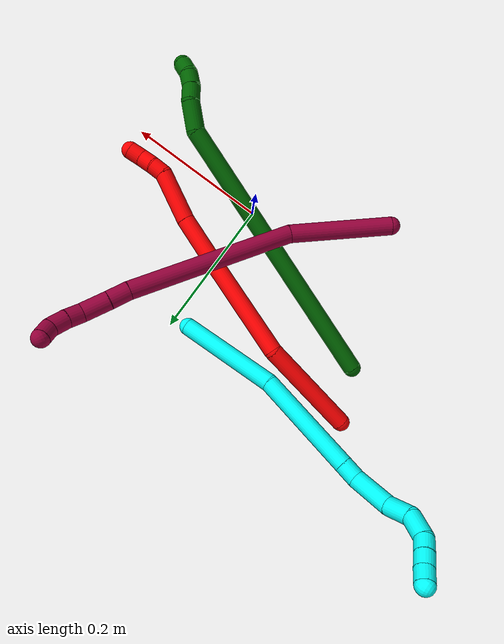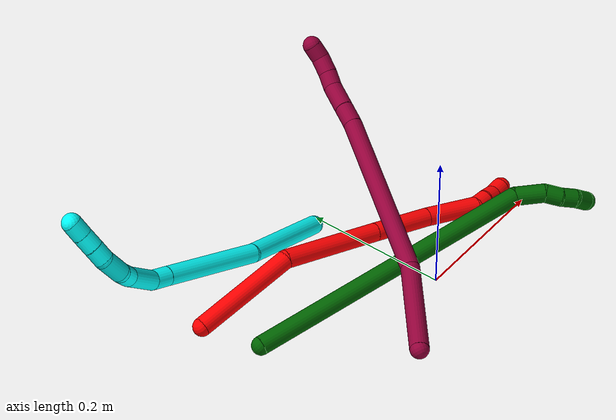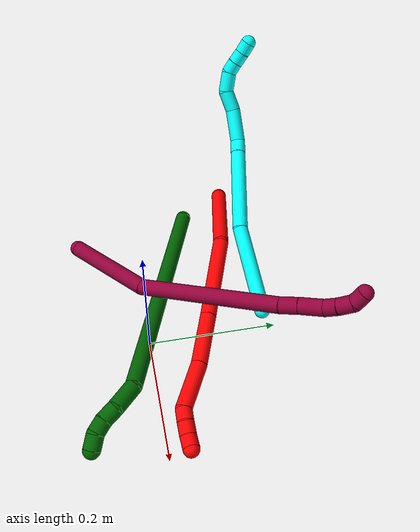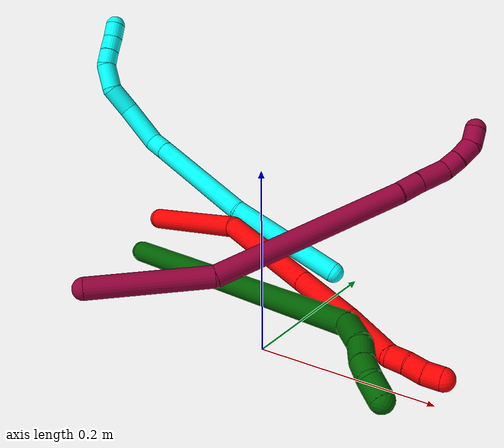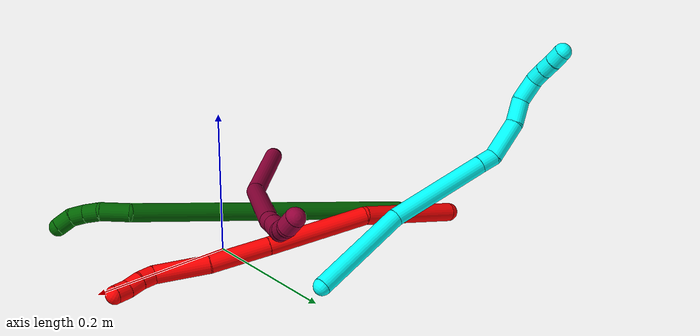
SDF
<sdf version="1.7">
 <world name="default">
  <model name="photoneo_s_sensor">
   <static>1</static>
   <pose>0 0 2 1.57079 1.57079 3.14159</pose>
   <link name="link">
    <inertial><mass>0.1</mass></inertial>
    <sensor name="sensor" type="depth">
     <update_rate>30</update_rate>
     <camera>
      <horizontal_fov>1.22</horizontal_fov>
      <image><width>1920</width><height>1200</height><format>B8G8R8</format></image>
      <clip><near>0.1</near><far>4</far></clip>
      <depth_camera><output>points</output></depth_camera>
     </camera>
     <plugin name="camera_plugin" filename="libgazebo_ros_depth_camera.so">
      <baseline>0.2</baseline>
      <alwaysOn>1</alwaysOn>
      <updateRate>0.0</updateRate>
      <cameraName>camera_ir</cameraName>
      <imageTopicName>/camera/color/image_raw</imageTopicName>
      <cameraInfoTopicName>/camera/color/camera_info</cameraInfoTopicName>
      <depthImageTopicName>/camera/depth/image_raw</depthImageTopicName>
      <depthImageCameraInfoTopicName>/camera/depth/camera_info</depthImageCameraInfoTopicName>
      <pointCloudTopicName>/camera/depth/points</pointCloudTopicName>
      <frameName>fr_optical</frameName>
      <pointCloudCutoff>0.1</pointCloudCutoff>
      <pointCloudCutoffMax>2.0</pointCloudCutoffMax>
      <distortionK1>0</distortionK1>
      <distortionK2>0</distortionK2>
      <distortionK3>0</distortionK3>
      <distortionT1>0</distortionT1>
      <distortionT2>0</distortionT2>
      <CxPrime>0</CxPrime>
      <Cx>0</Cx>
      <Cy>0</Cy>
      <focalLength>0</focalLength>
      <hackBaseline>0</hackBaseline>
     </plugin>
    </sensor>
   </link>
  </model>
  <model name="bin">
   <static>1</static>
   <link name="bottom">
    <collision name="collision-bottom">
     <pose>0 0 -0.01 0 -0 0</pose>
     <geometry><box><size>0.8 0.6 0.02</size></box></geometry>
     <surface>
      <friction><ode><mu>100</mu><mu2>100</mu2></ode></friction>
      <contact><collide_bitmask>65535</collide_bitmask></contact>
     </surface>
    </collision>
   </link>
   <link name="west_wall">
    <collision name="collision-west_wall">
     <pose>-0.41 0 0.1 0 -0 0</pose>
     <geometry><box><size>0.02 0.6 0.2</size></box></geometry>
     <surface>
      <friction><ode><mu>100</mu><mu2>100</mu2></ode></friction>
      <contact><collide_bitmask>65535</collide_bitmask></contact>
     </surface>
    </collision>
   </link>
   <link name="east_wall">
    <collision name="collision-east_wall">
     <pose>0.41 0 0.1 0 -0 0</pose>
     <geometry><box><size>0.02 0.6 0.2</size></box></geometry>
     <surface>
      <friction><ode><mu>100</mu><mu2>100</mu2></ode></friction>
      <contact><collide_bitmask>65535</collide_bitmask></contact>
     </surface>
    </collision>
   </link>
   <link name="south_wall">
    <collision name="collision-south_wall">
     <pose>0 -0.31 0.1 0 -0 0</pose>
     <geometry><box><size>0.8 0.02 0.2</size></box></geometry>
     <surface>
      <friction><ode><mu>100</mu><mu2>100</mu2></ode></friction>
      <contact><collide_bitmask>65535</collide_bitmask></contact>
     </surface>
    </collision>
   </link>
   <link name="north_wall">
    <collision name="collision-north_wall">
     <pose>0 0.31 0.1 0 -0 0</pose>
     <geometry><box><size>0.8 0.02 0.2</size></box></geometry>
     <surface>
      <friction><ode><mu>100</mu><mu2>100</mu2></ode></friction>
      <contact><collide_bitmask>65535</collide_bitmask></contact>
     </surface>
    </collision>
   </link>
  </model>
  <model name="2">
   <static>0</static>
   <link name="2">
    <collision name="collision-cylinder-e_1_1_4">
     <pose>0.067923 -0.008934 -0.020213 2.7254 1.25623 2.5757</pose>
     <geometry><cylinder><radius>0.0125</radius><length>0.142855</length></cylinder></geometry>
     <surface>
      <friction><ode><mu>1.16</mu><mu2>1.16</mu2><slip1>0</slip1><slip2>0</slip2></ode></friction>
      <contact><ode><kp>1e+06</kp><kd>1</kd><max_vel>0</max_vel><min_depth>0.001</min_depth></ode></contact>
     </surface>
    </collision>
    <visual name="visual-cylinder-e_1_1_4">
     <pose>0.067923 -0.008934 -0.020213 2.7254 1.25623 2.5757</pose>
     <geometry><cylinder><radius>0.0125</radius><length>0.142855</length></cylinder></geometry>
     <material><ambient>1 0 0 1</ambient></material>
    </visual>
    <collision name="collision-cylinder-e_2_4_5">
     <pose>0.189216 -0.029743 -0.083572 2.87303 0.873043 2.57788</pose>
     <geometry><cylinder><radius>0.0125</radius><length>0.139298</length></cylinder></geometry>
     <surface>
      <friction><ode><mu>1.16</mu><mu2>1.16</mu2><slip1>0</slip1><slip2>0</slip2></ode></friction>
      <contact><ode><kp>1e+06</kp><kd>1</kd><max_vel>0</max_vel><min_depth>0.001</min_depth></ode></contact>
     </surface>
    </collision>
    <visual name="visual-cylinder-e_2_4_5">
     <pose>0.189216 -0.029743 -0.083572 2.87303 0.873043 2.57788</pose>
     <geometry><cylinder><radius>0.0125</radius><length>0.139298</length></cylinder></geometry>
     <material><ambient>1 0 0 1</ambient></material>
    </visual>
    <collision name="collision-cylinder-e_3_5_6">
     <pose>0.274092 -0.049236 -0.152326 2.85241 0.8674 2.53234</pose>
     <geometry><cylinder><radius>0.0125</radius><length>0.082618</length></cylinder></geometry>
     <surface>
      <friction><ode><mu>1.16</mu><mu2>1.16</mu2><slip1>0</slip1><slip2>0</slip2></ode></friction>
      <contact><ode><kp>1e+06</kp><kd>1</kd><max_vel>0</max_vel><min_depth>0.001</min_depth></ode></contact>
     </surface>
    </collision>
    <visual name="visual-cylinder-e_3_5_6">
     <pose>0.274092 -0.049236 -0.152326 2.85241 0.8674 2.53234</pose>
     <geometry><cylinder><radius>0.0125</radius><length>0.082618</length></cylinder></geometry>
     <material><ambient>1 0 0 1</ambient></material>
    </visual>
    <collision name="collision-cylinder-e_4_6_7">
     <pose>0.333091 -0.068836 -0.200091 2.64586 0.82919 2.09789</pose>
     <geometry><cylinder><radius>0.0125</radius><length>0.074575</length></cylinder></geometry>
     <surface>
      <friction><ode><mu>1.16</mu><mu2>1.16</mu2><slip1>0</slip1><slip2>0</slip2></ode></friction>
      <contact><ode><kp>1e+06</kp><kd>1</kd><max_vel>0</max_vel><min_depth>0.001</min_depth></ode></contact>
     </surface>
    </collision>
    <visual name="visual-cylinder-e_4_6_7">
     <pose>0.333091 -0.068836 -0.200091 2.64586 0.82919 2.09789</pose>
     <geometry><cylinder><radius>0.0125</radius><length>0.074575</length></cylinder></geometry>
     <material><ambient>1 0 0 1</ambient></material>
    </visual>
    <collision name="collision-cylinder-e_5_7_8">
     <pose>0.369316 -0.079798 -0.227268 -2.94136 1.03995 -2.79423</pose>
     <geometry><cylinder><radius>0.0125</radius><length>0.020245</length></cylinder></geometry>
     <surface>
      <friction><ode><mu>1.16</mu><mu2>1.16</mu2><slip1>0</slip1><slip2>0</slip2></ode></friction>
      <contact><ode><kp>1e+06</kp><kd>1</kd><max_vel>0</max_vel><min_depth>0.001</min_depth></ode></contact>
     </surface>
    </collision>
    <visual name="visual-cylinder-e_5_7_8">
     <pose>0.369316 -0.079798 -0.227268 -2.94136 1.03995 -2.79423</pose>
     <geometry><cylinder><radius>0.0125</radius><length>0.020245</length></cylinder></geometry>
     <material><ambient>1 0 0 1</ambient></material>
    </visual>
    <collision name="collision-cylinder-e_6_8_9">
     <pose>0.385842 -0.076824 -0.238487 -2.83602 0.875992 -2.50627</pose>
     <geometry><cylinder><radius>0.0125</radius><length>0.020299</length></cylinder></geometry>
     <surface>
      <friction><ode><mu>1.16</mu><mu2>1.16</mu2><slip1>0</slip1><slip2>0</slip2></ode></friction>
      <contact><ode><kp>1e+06</kp><kd>1</kd><max_vel>0</max_vel><min_depth>0.001</min_depth></ode></contact>
     </surface>
    </collision>
    <visual name="visual-cylinder-e_6_8_9">
     <pose>0.385842 -0.076824 -0.238487 -2.83602 0.875992 -2.50627</pose>
     <geometry><cylinder><radius>0.0125</radius><length>0.020299</length></cylinder></geometry>
     <material><ambient>1 0 0 1</ambient></material>
    </visual>
    <collision name="collision-cylinder-e_7_9_2">
     <pose>0.402581 -0.073209 -0.248972 -2.77225 1.09583 -2.5475</pose>
     <geometry><cylinder><radius>0.0125</radius><length>0.020111</length></cylinder></geometry>
     <surface>
      <friction><ode><mu>1.16</mu><mu2>1.16</mu2><slip1>0</slip1><slip2>0</slip2></ode></friction>
      <contact><ode><kp>1e+06</kp><kd>1</kd><max_vel>0</max_vel><min_depth>0.001</min_depth></ode></contact>
     </surface>
    </collision>
    <visual name="visual-cylinder-e_7_9_2">
     <pose>0.402581 -0.073209 -0.248972 -2.77225 1.09583 -2.5475</pose>
     <geometry><cylinder><radius>0.0125</radius><length>0.020111</length></cylinder></geometry>
     <material><ambient>1 0 0 1</ambient></material>
    </visual>
    <collision name="collision-sphere-2">
     <pose>0.411523 -0.071549 -0.25326 0 -0 0</pose>
     <geometry><sphere><radius>0.0125</radius></sphere></geometry>
     <surface>
      <friction><ode><mu>1.16</mu><mu2>1.16</mu2><slip1>0</slip1><slip2>0</slip2></ode></friction>
      <contact><ode><kp>1e+06</kp><kd>1</kd><max_vel>0</max_vel><min_depth>0.001</min_depth></ode></contact>
     </surface>
    </collision>
    <visual name="visual-sphere-2">
     <pose>0.411523 -0.071549 -0.25326 0 -0 0</pose>
     <geometry><sphere><radius>0.0125</radius></sphere></geometry>
     <material><ambient>1 0 0 1</ambient></material>
    </visual>
    <collision name="collision-sphere-9">
     <pose>0.393638 -0.074869 -0.244684 0 -0 0</pose>
     <geometry><sphere><radius>0.0125</radius></sphere></geometry>
     <surface>
      <friction><ode><mu>1.16</mu><mu2>1.16</mu2><slip1>0</slip1><slip2>0</slip2></ode></friction>
      <contact><ode><kp>1e+06</kp><kd>1</kd><max_vel>0</max_vel><min_depth>0.001</min_depth></ode></contact>
     </surface>
    </collision>
    <visual name="visual-sphere-9">
     <pose>0.393638 -0.074869 -0.244684 0 -0 0</pose>
     <geometry><sphere><radius>0.0125</radius></sphere></geometry>
     <material><ambient>1 0 0 1</ambient></material>
    </visual>
    <collision name="collision-sphere-4">
     <pose>0.135845 -0.017869 -0.040426 0 -0 0</pose>
     <geometry><sphere><radius>0.0125</radius></sphere></geometry>
     <surface>
      <friction><ode><mu>1.16</mu><mu2>1.16</mu2><slip1>0</slip1><slip2>0</slip2></ode></friction>
      <contact><ode><kp>1e+06</kp><kd>1</kd><max_vel>0</max_vel><min_depth>0.001</min_depth></ode></contact>
     </surface>
    </collision>
    <visual name="visual-sphere-4">
     <pose>0.135845 -0.017869 -0.040426 0 -0 0</pose>
     <geometry><sphere><radius>0.0125</radius></sphere></geometry>
     <material><ambient>1 0 0 1</ambient></material>
    </visual>
    <collision name="collision-sphere-1">
     <geometry><sphere><radius>0.0125</radius></sphere></geometry>
     <surface>
      <friction><ode><mu>1.16</mu><mu2>1.16</mu2><slip1>0</slip1><slip2>0</slip2></ode></friction>
      <contact><ode><kp>1e+06</kp><kd>1</kd><max_vel>0</max_vel><min_depth>0.001</min_depth></ode></contact>
     </surface>
    </collision>
    <visual name="visual-sphere-1">
     <geometry><sphere><radius>0.0125</radius></sphere></geometry>
     <material><ambient>1 0 0 1</ambient></material>
    </visual>
    <collision name="collision-sphere-8">
     <pose>0.378045 -0.078778 -0.23229 0 -0 0</pose>
     <geometry><sphere><radius>0.0125</radius></sphere></geometry>
     <surface>
      <friction><ode><mu>1.16</mu><mu2>1.16</mu2><slip1>0</slip1><slip2>0</slip2></ode></friction>
      <contact><ode><kp>1e+06</kp><kd>1</kd><max_vel>0</max_vel><min_depth>0.001</min_depth></ode></contact>
     </surface>
    </collision>
    <visual name="visual-sphere-8">
     <pose>0.378045 -0.078778 -0.23229 0 -0 0</pose>
     <geometry><sphere><radius>0.0125</radius></sphere></geometry>
     <material><ambient>1 0 0 1</ambient></material>
    </visual>
    <collision name="collision-sphere-5">
     <pose>0.242588 -0.041617 -0.126717 0 -0 0</pose>
     <geometry><sphere><radius>0.0125</radius></sphere></geometry>
     <surface>
      <friction><ode><mu>1.16</mu><mu2>1.16</mu2><slip1>0</slip1><slip2>0</slip2></ode></friction>
      <contact><ode><kp>1e+06</kp><kd>1</kd><max_vel>0</max_vel><min_depth>0.001</min_depth></ode></contact>
     </surface>
    </collision>
    <visual name="visual-sphere-5">
     <pose>0.242588 -0.041617 -0.126717 0 -0 0</pose>
     <geometry><sphere><radius>0.0125</radius></sphere></geometry>
     <material><ambient>1 0 0 1</ambient></material>
    </visual>
    <collision name="collision-sphere-6">
     <pose>0.305596 -0.056856 -0.177936 0 -0 0</pose>
     <geometry><sphere><radius>0.0125</radius></sphere></geometry>
     <surface>
      <friction><ode><mu>1.16</mu><mu2>1.16</mu2><slip1>0</slip1><slip2>0</slip2></ode></friction>
      <contact><ode><kp>1e+06</kp><kd>1</kd><max_vel>0</max_vel><min_depth>0.001</min_depth></ode></contact>
     </surface>
    </collision>
    <visual name="visual-sphere-6">
     <pose>0.305596 -0.056856 -0.177936 0 -0 0</pose>
     <geometry><sphere><radius>0.0125</radius></sphere></geometry>
     <material><ambient>1 0 0 1</ambient></material>
    </visual>
    <collision name="collision-sphere-7">
     <pose>0.360587 -0.080817 -0.222246 0 -0 0</pose>
     <geometry><sphere><radius>0.0125</radius></sphere></geometry>
     <surface>
      <friction><ode><mu>1.16</mu><mu2>1.16</mu2><slip1>0</slip1><slip2>0</slip2></ode></friction>
      <contact><ode><kp>1e+06</kp><kd>1</kd><max_vel>0</max_vel><min_depth>0.001</min_depth></ode></contact>
     </surface>
    </collision>
    <visual name="visual-sphere-7">
     <pose>0.360587 -0.080817 -0.222246 0 -0 0</pose>
     <geometry><sphere><radius>0.0125</radius></sphere></geometry>
     <material><ambient>1 0 0 1</ambient></material>
    </visual>
    <inertial>
     <pose>0.213901 -0.038536 -0.112969 0 -0 0</pose>
     <mass>0.5</mass>
     <inertia>
      <ixx>-4e-05</ixx>
      <ixy>0</ixy>
      <ixz>0</ixz>
      <iyy>0.000688</iyy>
      <iyz>0</iyz>
      <izz>-0.000412</izz>
     </inertia>
    </inertial>
   </link>
   <pose>-0.2754 0.165052 0.031993 -0.344242 -0.435833 0.042088</pose>
  </model>
  <model name="3">
   <static>0</static>
   <link name="3">
    <collision name="collision-cylinder-e_1_1_4">
     <pose>-0.007158 -0.007054 0.072229 0.097349 -0.098317 -0.004793</pose>
     <geometry><cylinder><radius>0.0125</radius><length>0.145849</length></cylinder></geometry>
     <surface>
      <friction><ode><mu>1.16</mu><mu2>1.16</mu2><slip1>0</slip1><slip2>0</slip2></ode></friction>
      <contact><ode><kp>1e+06</kp><kd>1</kd><max_vel>0</max_vel><min_depth>0.001</min_depth></ode></contact>
     </surface>
    </collision>
    <visual name="visual-cylinder-e_1_1_4">
     <pose>-0.007158 -0.007054 0.072229 0.097349 -0.098317 -0.004793</pose>
     <geometry><cylinder><radius>0.0125</radius><length>0.145849</length></cylinder></geometry>
     <material><ambient>0.003922 1 0.996078 1</ambient></material>
    </visual>
    <collision name="collision-cylinder-e_2_4_5">
     <pose>-0.035167 -0.012439 0.213684 -0.02409 -0.292469 0.003548</pose>
     <geometry><cylinder><radius>0.0125</radius><length>0.144635</length></cylinder></geometry>
     <surface>
      <friction><ode><mu>1.16</mu><mu2>1.16</mu2><slip1>0</slip1><slip2>0</slip2></ode></friction>
      <contact><ode><kp>1e+06</kp><kd>1</kd><max_vel>0</max_vel><min_depth>0.001</min_depth></ode></contact>
     </surface>
    </collision>
    <visual name="visual-cylinder-e_2_4_5">
     <pose>-0.035167 -0.012439 0.213684 -0.02409 -0.292469 0.003548</pose>
     <geometry><cylinder><radius>0.0125</radius><length>0.144635</length></cylinder></geometry>
     <material><ambient>0.003922 1 0.996078 1</ambient></material>
    </visual>
    <collision name="collision-cylinder-e_3_5_6">
     <pose>-0.059769 -0.010614 0.294655 -0.01344 -0.309194 0.002095</pose>
     <geometry><cylinder><radius>0.0125</radius><length>0.024661</length></cylinder></geometry>
     <surface>
      <friction><ode><mu>1.16</mu><mu2>1.16</mu2><slip1>0</slip1><slip2>0</slip2></ode></friction>
      <contact><ode><kp>1e+06</kp><kd>1</kd><max_vel>0</max_vel><min_depth>0.001</min_depth></ode></contact>
     </surface>
    </collision>
    <visual name="visual-cylinder-e_3_5_6">
     <pose>-0.059769 -0.010614 0.294655 -0.01344 -0.309194 0.002095</pose>
     <geometry><cylinder><radius>0.0125</radius><length>0.024661</length></cylinder></geometry>
     <material><ambient>0.003922 1 0.996078 1</ambient></material>
    </visual>
    <collision name="collision-cylinder-e_4_6_7">
     <pose>-0.060181 -0.004611 0.3335 -0.212418 0.119902 -0.012798</pose>
     <geometry><cylinder><radius>0.0125</radius><length>0.055848</length></cylinder></geometry>
     <surface>
      <friction><ode><mu>1.16</mu><mu2>1.16</mu2><slip1>0</slip1><slip2>0</slip2></ode></friction>
      <contact><ode><kp>1e+06</kp><kd>1</kd><max_vel>0</max_vel><min_depth>0.001</min_depth></ode></contact>
     </surface>
    </collision>
    <visual name="visual-cylinder-e_4_6_7">
     <pose>-0.060181 -0.004611 0.3335 -0.212418 0.119902 -0.012798</pose>
     <geometry><cylinder><radius>0.0125</radius><length>0.055848</length></cylinder></geometry>
     <material><ambient>0.003922 1 0.996078 1</ambient></material>
    </visual>
    <collision name="collision-cylinder-e_5_7_8">
     <pose>-0.049823 0.004176 0.376448 -0.183592 0.41064 -0.038337</pose>
     <geometry><cylinder><radius>0.0125</radius><length>0.035161</length></cylinder></geometry>
     <surface>
      <friction><ode><mu>1.16</mu><mu2>1.16</mu2><slip1>0</slip1><slip2>0</slip2></ode></friction>
      <contact><ode><kp>1e+06</kp><kd>1</kd><max_vel>0</max_vel><min_depth>0.001</min_depth></ode></contact>
     </surface>
    </collision>
    <visual name="visual-cylinder-e_5_7_8">
     <pose>-0.049823 0.004176 0.376448 -0.183592 0.41064 -0.038337</pose>
     <geometry><cylinder><radius>0.0125</radius><length>0.035161</length></cylinder></geometry>
     <material><ambient>0.003922 1 0.996078 1</ambient></material>
    </visual>
    <collision name="collision-cylinder-e_6_8_9">
     <pose>-0.041155 0.016782 0.405927 -0.616689 0.098449 -0.031379</pose>
     <geometry><cylinder><radius>0.0125</radius><length>0.033579</length></cylinder></geometry>
     <surface>
      <friction><ode><mu>1.16</mu><mu2>1.16</mu2><slip1>0</slip1><slip2>0</slip2></ode></friction>
      <contact><ode><kp>1e+06</kp><kd>1</kd><max_vel>0</max_vel><min_depth>0.001</min_depth></ode></contact>
     </surface>
    </collision>
    <visual name="visual-cylinder-e_6_8_9">
     <pose>-0.041155 0.016782 0.405927 -0.616689 0.098449 -0.031379</pose>
     <geometry><cylinder><radius>0.0125</radius><length>0.033579</length></cylinder></geometry>
     <material><ambient>0.003922 1 0.996078 1</ambient></material>
    </visual>
    <collision name="collision-cylinder-e_7_9_10">
     <pose>-0.040279 0.034973 0.424895 -1.01153 -0.076786 0.04254</pose>
     <geometry><cylinder><radius>0.0125</radius><length>0.020181</length></cylinder></geometry>
     <surface>
      <friction><ode><mu>1.16</mu><mu2>1.16</mu2><slip1>0</slip1><slip2>0</slip2></ode></friction>
      <contact><ode><kp>1e+06</kp><kd>1</kd><max_vel>0</max_vel><min_depth>0.001</min_depth></ode></contact>
     </surface>
    </collision>
    <visual name="visual-cylinder-e_7_9_10">
     <pose>-0.040279 0.034973 0.424895 -1.01153 -0.076786 0.04254</pose>
     <geometry><cylinder><radius>0.0125</radius><length>0.020181</length></cylinder></geometry>
     <material><ambient>0.003922 1 0.996078 1</ambient></material>
    </visual>
    <collision name="collision-cylinder-e_8_10_11">
     <pose>-0.042185 0.052124 0.435247 -1.04413 -0.112987 0.065049</pose>
     <geometry><cylinder><radius>0.0125</radius><length>0.020078</length></cylinder></geometry>
     <surface>
      <friction><ode><mu>1.16</mu><mu2>1.16</mu2><slip1>0</slip1><slip2>0</slip2></ode></friction>
      <contact><ode><kp>1e+06</kp><kd>1</kd><max_vel>0</max_vel><min_depth>0.001</min_depth></ode></contact>
     </surface>
    </collision>
    <visual name="visual-cylinder-e_8_10_11">
     <pose>-0.042185 0.052124 0.435247 -1.04413 -0.112987 0.065049</pose>
     <geometry><cylinder><radius>0.0125</radius><length>0.020078</length></cylinder></geometry>
     <material><ambient>0.003922 1 0.996078 1</ambient></material>
    </visual>
    <collision name="collision-cylinder-e_9_11_2">
     <pose>-0.043895 0.069189 0.445599 -1.00688 -0.057857 0.031873</pose>
     <geometry><cylinder><radius>0.0125</radius><length>0.020009</length></cylinder></geometry>
     <surface>
      <friction><ode><mu>1.16</mu><mu2>1.16</mu2><slip1>0</slip1><slip2>0</slip2></ode></friction>
      <contact><ode><kp>1e+06</kp><kd>1</kd><max_vel>0</max_vel><min_depth>0.001</min_depth></ode></contact>
     </surface>
    </collision>
    <visual name="visual-cylinder-e_9_11_2">
     <pose>-0.043895 0.069189 0.445599 -1.00688 -0.057857 0.031873</pose>
     <geometry><cylinder><radius>0.0125</radius><length>0.020009</length></cylinder></geometry>
     <material><ambient>0.003922 1 0.996078 1</ambient></material>
    </visual>
    <collision name="collision-sphere-2">
     <pose>-0.044474 0.07763 0.450937 0 -0 0</pose>
     <geometry><sphere><radius>0.0125</radius></sphere></geometry>
     <surface>
      <friction><ode><mu>1.16</mu><mu2>1.16</mu2><slip1>0</slip1><slip2>0</slip2></ode></friction>
      <contact><ode><kp>1e+06</kp><kd>1</kd><max_vel>0</max_vel><min_depth>0.001</min_depth></ode></contact>
     </surface>
    </collision>
    <visual name="visual-sphere-2">
     <pose>-0.044474 0.07763 0.450937 0 -0 0</pose>
     <geometry><sphere><radius>0.0125</radius></sphere></geometry>
     <material><ambient>0.003922 1 0.996078 1</ambient></material>
    </visual>
    <collision name="collision-sphere-11">
     <pose>-0.043317 0.060747 0.440261 0 -0 0</pose>
     <geometry><sphere><radius>0.0125</radius></sphere></geometry>
     <surface>
      <friction><ode><mu>1.16</mu><mu2>1.16</mu2><slip1>0</slip1><slip2>0</slip2></ode></friction>
      <contact><ode><kp>1e+06</kp><kd>1</kd><max_vel>0</max_vel><min_depth>0.001</min_depth></ode></contact>
     </surface>
    </collision>
    <visual name="visual-sphere-11">
     <pose>-0.043317 0.060747 0.440261 0 -0 0</pose>
     <geometry><sphere><radius>0.0125</radius></sphere></geometry>
     <material><ambient>0.003922 1 0.996078 1</ambient></material>
    </visual>
    <collision name="collision-sphere-10">
     <pose>-0.041053 0.043501 0.430233 0 -0 0</pose>
     <geometry><sphere><radius>0.0125</radius></sphere></geometry>
     <surface>
      <friction><ode><mu>1.16</mu><mu2>1.16</mu2><slip1>0</slip1><slip2>0</slip2></ode></friction>
      <contact><ode><kp>1e+06</kp><kd>1</kd><max_vel>0</max_vel><min_depth>0.001</min_depth></ode></contact>
     </surface>
    </collision>
    <visual name="visual-sphere-10">
     <pose>-0.041053 0.043501 0.430233 0 -0 0</pose>
     <geometry><sphere><radius>0.0125</radius></sphere></geometry>
     <material><ambient>0.003922 1 0.996078 1</ambient></material>
    </visual>
    <collision name="collision-sphere-9">
     <pose>-0.039505 0.026445 0.419557 0 -0 0</pose>
     <geometry><sphere><radius>0.0125</radius></sphere></geometry>
     <surface>
      <friction><ode><mu>1.16</mu><mu2>1.16</mu2><slip1>0</slip1><slip2>0</slip2></ode></friction>
      <contact><ode><kp>1e+06</kp><kd>1</kd><max_vel>0</max_vel><min_depth>0.001</min_depth></ode></contact>
     </surface>
    </collision>
    <visual name="visual-sphere-9">
     <pose>-0.039505 0.026445 0.419557 0 -0 0</pose>
     <geometry><sphere><radius>0.0125</radius></sphere></geometry>
     <material><ambient>0.003922 1 0.996078 1</ambient></material>
    </visual>
    <collision name="collision-sphere-4">
     <pose>-0.014316 -0.014107 0.144458 0 -0 0</pose>
     <geometry><sphere><radius>0.0125</radius></sphere></geometry>
     <surface>
      <friction><ode><mu>1.16</mu><mu2>1.16</mu2><slip1>0</slip1><slip2>0</slip2></ode></friction>
      <contact><ode><kp>1e+06</kp><kd>1</kd><max_vel>0</max_vel><min_depth>0.001</min_depth></ode></contact>
     </surface>
    </collision>
    <visual name="visual-sphere-4">
     <pose>-0.014316 -0.014107 0.144458 0 -0 0</pose>
     <geometry><sphere><radius>0.0125</radius></sphere></geometry>
     <material><ambient>0.003922 1 0.996078 1</ambient></material>
    </visual>
    <collision name="collision-sphere-1">
     <geometry><sphere><radius>0.0125</radius></sphere></geometry>
     <surface>
      <friction><ode><mu>1.16</mu><mu2>1.16</mu2><slip1>0</slip1><slip2>0</slip2></ode></friction>
      <contact><ode><kp>1e+06</kp><kd>1</kd><max_vel>0</max_vel><min_depth>0.001</min_depth></ode></contact>
     </surface>
    </collision>
    <visual name="visual-sphere-1">
     <geometry><sphere><radius>0.0125</radius></sphere></geometry>
     <material><ambient>0.003922 1 0.996078 1</ambient></material>
    </visual>
    <collision name="collision-sphere-8">
     <pose>-0.042805 0.007119 0.392296 0 -0 0</pose>
     <geometry><sphere><radius>0.0125</radius></sphere></geometry>
     <surface>
      <friction><ode><mu>1.16</mu><mu2>1.16</mu2><slip1>0</slip1><slip2>0</slip2></ode></friction>
      <contact><ode><kp>1e+06</kp><kd>1</kd><max_vel>0</max_vel><min_depth>0.001</min_depth></ode></contact>
     </surface>
    </collision>
    <visual name="visual-sphere-8">
     <pose>-0.042805 0.007119 0.392296 0 -0 0</pose>
     <geometry><sphere><radius>0.0125</radius></sphere></geometry>
     <material><ambient>0.003922 1 0.996078 1</ambient></material>
    </visual>
    <collision name="collision-sphere-5">
     <pose>-0.056017 -0.010772 0.28291 0 -0 0</pose>
     <geometry><sphere><radius>0.0125</radius></sphere></geometry>
     <surface>
      <friction><ode><mu>1.16</mu><mu2>1.16</mu2><slip1>0</slip1><slip2>0</slip2></ode></friction>
      <contact><ode><kp>1e+06</kp><kd>1</kd><max_vel>0</max_vel><min_depth>0.001</min_depth></ode></contact>
     </surface>
    </collision>
    <visual name="visual-sphere-5">
     <pose>-0.056017 -0.010772 0.28291 0 -0 0</pose>
     <geometry><sphere><radius>0.0125</radius></sphere></geometry>
     <material><ambient>0.003922 1 0.996078 1</ambient></material>
    </visual>
    <collision name="collision-sphere-6">
     <pose>-0.063521 -0.010456 0.3064 0 -0 0</pose>
     <geometry><sphere><radius>0.0125</radius></sphere></geometry>
     <surface>
      <friction><ode><mu>1.16</mu><mu2>1.16</mu2><slip1>0</slip1><slip2>0</slip2></ode></friction>
      <contact><ode><kp>1e+06</kp><kd>1</kd><max_vel>0</max_vel><min_depth>0.001</min_depth></ode></contact>
     </surface>
    </collision>
    <visual name="visual-sphere-6">
     <pose>-0.063521 -0.010456 0.3064 0 -0 0</pose>
     <geometry><sphere><radius>0.0125</radius></sphere></geometry>
     <material><ambient>0.003922 1 0.996078 1</ambient></material>
    </visual>
    <collision name="collision-sphere-7">
     <pose>-0.056841 0.001234 0.360601 0 -0 0</pose>
     <geometry><sphere><radius>0.0125</radius></sphere></geometry>
     <surface>
      <friction><ode><mu>1.16</mu><mu2>1.16</mu2><slip1>0</slip1><slip2>0</slip2></ode></friction>
      <contact><ode><kp>1e+06</kp><kd>1</kd><max_vel>0</max_vel><min_depth>0.001</min_depth></ode></contact>
     </surface>
    </collision>
    <visual name="visual-sphere-7">
     <pose>-0.056841 0.001234 0.360601 0 -0 0</pose>
     <geometry><sphere><radius>0.0125</radius></sphere></geometry>
     <material><ambient>0.003922 1 0.996078 1</ambient></material>
    </visual>
    <inertial>
     <pose>-0.033274 0.001 0.240857 0 -0 0</pose>
     <mass>0.5</mass>
     <inertia>
      <ixx>0.000538</ixx>
      <ixy>0</ixy>
      <ixz>0</ixz>
      <iyy>0.000555</iyy>
      <iyz>0</iyz>
      <izz>0.000141</izz>
     </inertia>
    </inertial>
   </link>
   <pose>-0.023032 0.185894 0.011499 0.944263 -0.580444 -1.11769</pose>
  </model>
  <model name="6">
   <static>0</static>
   <link name="6">
    <collision name="collision-cylinder-e_1_1_4">
     <pose>0.183148 -0.053427 -0.051048 2.33342 1.1873 2.01202</pose>
     <geometry><cylinder><radius>0.0125</radius><length>0.394987</length></cylinder></geometry>
     <surface>
      <friction><ode><mu>1.16</mu><mu2>1.16</mu2><slip1>0</slip1><slip2>0</slip2></ode></friction>
      <contact><ode><kp>1e+06</kp><kd>1</kd><max_vel>0</max_vel><min_depth>0.001</min_depth></ode></contact>
     </surface>
    </collision>
    <visual name="visual-cylinder-e_1_1_4">
     <pose>0.183148 -0.053427 -0.051048 2.33342 1.1873 2.01202</pose>
     <geometry><cylinder><radius>0.0125</radius><length>0.394987</length></cylinder></geometry>
     <material><ambient>0 0.392157 0.003922 1</ambient></material>
    </visual>
    <collision name="collision-cylinder-e_2_4_5">
     <pose>0.380195 -0.114466 -0.114559 2.59333 0.760689 1.91564</pose>
     <geometry><cylinder><radius>0.0125</radius><length>0.04032</length></cylinder></geometry>
     <surface>
      <friction><ode><mu>1.16</mu><mu2>1.16</mu2><slip1>0</slip1><slip2>0</slip2></ode></friction>
      <contact><ode><kp>1e+06</kp><kd>1</kd><max_vel>0</max_vel><min_depth>0.001</min_depth></ode></contact>
     </surface>
    </collision>
    <visual name="visual-cylinder-e_2_4_5">
     <pose>0.380195 -0.114466 -0.114559 2.59333 0.760689 1.91564</pose>
     <geometry><cylinder><radius>0.0125</radius><length>0.04032</length></cylinder></geometry>
     <material><ambient>0 0.392157 0.003922 1</ambient></material>
    </visual>
    <collision name="collision-cylinder-e_3_5_6">
     <pose>0.399614 -0.124641 -0.136641 2.88113 0.506323 2.20433</pose>
     <geometry><cylinder><radius>0.0125</radius><length>0.022767</length></cylinder></geometry>
     <surface>
      <friction><ode><mu>1.16</mu><mu2>1.16</mu2><slip1>0</slip1><slip2>0</slip2></ode></friction>
      <contact><ode><kp>1e+06</kp><kd>1</kd><max_vel>0</max_vel><min_depth>0.001</min_depth></ode></contact>
     </surface>
    </collision>
    <visual name="visual-cylinder-e_3_5_6">
     <pose>0.399614 -0.124641 -0.136641 2.88113 0.506323 2.20433</pose>
     <geometry><cylinder><radius>0.0125</radius><length>0.022767</length></cylinder></geometry>
     <material><ambient>0 0.392157 0.003922 1</ambient></material>
    </visual>
    <collision name="collision-cylinder-e_4_6_7">
     <pose>0.411809 -0.128387 -0.153728 2.98455 0.723186 2.73137</pose>
     <geometry><cylinder><radius>0.0125</radius><length>0.02017</length></cylinder></geometry>
     <surface>
      <friction><ode><mu>1.16</mu><mu2>1.16</mu2><slip1>0</slip1><slip2>0</slip2></ode></friction>
      <contact><ode><kp>1e+06</kp><kd>1</kd><max_vel>0</max_vel><min_depth>0.001</min_depth></ode></contact>
     </surface>
    </collision>
    <visual name="visual-cylinder-e_4_6_7">
     <pose>0.411809 -0.128387 -0.153728 2.98455 0.723186 2.73137</pose>
     <geometry><cylinder><radius>0.0125</radius><length>0.02017</length></cylinder></geometry>
     <material><ambient>0 0.392157 0.003922 1</ambient></material>
    </visual>
    <collision name="collision-cylinder-e_5_7_2">
     <pose>0.425909 -0.126568 -0.168557 -2.75434 0.751414 -2.21892</pose>
     <geometry><cylinder><radius>0.0125</radius><length>0.021756</length></cylinder></geometry>
     <surface>
      <friction><ode><mu>1.16</mu><mu2>1.16</mu2><slip1>0</slip1><slip2>0</slip2></ode></friction>
      <contact><ode><kp>1e+06</kp><kd>1</kd><max_vel>0</max_vel><min_depth>0.001</min_depth></ode></contact>
     </surface>
    </collision>
    <visual name="visual-cylinder-e_5_7_2">
     <pose>0.425909 -0.126568 -0.168557 -2.75434 0.751414 -2.21892</pose>
     <geometry><cylinder><radius>0.0125</radius><length>0.021756</length></cylinder></geometry>
     <material><ambient>0 0.392157 0.003922 1</ambient></material>
    </visual>
    <collision name="collision-sphere-2">
     <pose>0.433335 -0.123566 -0.175917 0 -0 0</pose>
     <geometry><sphere><radius>0.0125</radius></sphere></geometry>
     <surface>
      <friction><ode><mu>1.16</mu><mu2>1.16</mu2><slip1>0</slip1><slip2>0</slip2></ode></friction>
      <contact><ode><kp>1e+06</kp><kd>1</kd><max_vel>0</max_vel><min_depth>0.001</min_depth></ode></contact>
     </surface>
    </collision>
    <visual name="visual-sphere-2">
     <pose>0.433335 -0.123566 -0.175917 0 -0 0</pose>
     <geometry><sphere><radius>0.0125</radius></sphere></geometry>
     <material><ambient>0 0.392157 0.003922 1</ambient></material>
    </visual>
    <collision name="collision-sphere-7">
     <pose>0.418483 -0.12957 -0.161196 0 -0 0</pose>
     <geometry><sphere><radius>0.0125</radius></sphere></geometry>
     <surface>
      <friction><ode><mu>1.16</mu><mu2>1.16</mu2><slip1>0</slip1><slip2>0</slip2></ode></friction>
      <contact><ode><kp>1e+06</kp><kd>1</kd><max_vel>0</max_vel><min_depth>0.001</min_depth></ode></contact>
     </surface>
    </collision>
    <visual name="visual-sphere-7">
     <pose>0.418483 -0.12957 -0.161196 0 -0 0</pose>
     <geometry><sphere><radius>0.0125</radius></sphere></geometry>
     <material><ambient>0 0.392157 0.003922 1</ambient></material>
    </visual>
    <collision name="collision-sphere-6">
     <pose>0.405135 -0.127205 -0.146261 0 -0 0</pose>
     <geometry><sphere><radius>0.0125</radius></sphere></geometry>
     <surface>
      <friction><ode><mu>1.16</mu><mu2>1.16</mu2><slip1>0</slip1><slip2>0</slip2></ode></friction>
      <contact><ode><kp>1e+06</kp><kd>1</kd><max_vel>0</max_vel><min_depth>0.001</min_depth></ode></contact>
     </surface>
    </collision>
    <visual name="visual-sphere-6">
     <pose>0.405135 -0.127205 -0.146261 0 -0 0</pose>
     <geometry><sphere><radius>0.0125</radius></sphere></geometry>
     <material><ambient>0 0.392157 0.003922 1</ambient></material>
    </visual>
    <collision name="collision-sphere-5">
     <pose>0.394093 -0.122077 -0.127021 0 -0 0</pose>
     <geometry><sphere><radius>0.0125</radius></sphere></geometry>
     <surface>
      <friction><ode><mu>1.16</mu><mu2>1.16</mu2><slip1>0</slip1><slip2>0</slip2></ode></friction>
      <contact><ode><kp>1e+06</kp><kd>1</kd><max_vel>0</max_vel><min_depth>0.001</min_depth></ode></contact>
     </surface>
    </collision>
    <visual name="visual-sphere-5">
     <pose>0.394093 -0.122077 -0.127021 0 -0 0</pose>
     <geometry><sphere><radius>0.0125</radius></sphere></geometry>
     <material><ambient>0 0.392157 0.003922 1</ambient></material>
    </visual>
    <collision name="collision-sphere-1">
     <geometry><sphere><radius>0.0125</radius></sphere></geometry>
     <surface>
      <friction><ode><mu>1.16</mu><mu2>1.16</mu2><slip1>0</slip1><slip2>0</slip2></ode></friction>
      <contact><ode><kp>1e+06</kp><kd>1</kd><max_vel>0</max_vel><min_depth>0.001</min_depth></ode></contact>
     </surface>
    </collision>
    <visual name="visual-sphere-1">
     <geometry><sphere><radius>0.0125</radius></sphere></geometry>
     <material><ambient>0 0.392157 0.003922 1</ambient></material>
    </visual>
    <collision name="collision-sphere-4">
     <pose>0.366296 -0.106855 -0.102096 0 -0 0</pose>
     <geometry><sphere><radius>0.0125</radius></sphere></geometry>
     <surface>
      <friction><ode><mu>1.16</mu><mu2>1.16</mu2><slip1>0</slip1><slip2>0</slip2></ode></friction>
      <contact><ode><kp>1e+06</kp><kd>1</kd><max_vel>0</max_vel><min_depth>0.001</min_depth></ode></contact>
     </surface>
    </collision>
    <visual name="visual-sphere-4">
     <pose>0.366296 -0.106855 -0.102096 0 -0 0</pose>
     <geometry><sphere><radius>0.0125</radius></sphere></geometry>
     <material><ambient>0 0.392157 0.003922 1</ambient></material>
    </visual>
    <inertial>
     <pose>0.228682 -0.067799 -0.069322 0 -0 0</pose>
     <mass>0.5</mass>
     <inertia>
      <ixx>0.000955</ixx>
      <ixy>0</ixy>
      <ixz>0</ixz>
      <iyy>0.006389</iyy>
      <iyz>0</iyz>
      <izz>-0.003402</izz>
     </inertia>
    </inertial>
   </link>
   <pose>-0.245422 0.0943 0.018321 -0.943153 -0.098964 0.042914</pose>
  </model>
  <model name="8">
   <static>0</static>
   <link name="8">
    <collision name="collision-cylinder-e_1_1_4">
     <pose>0.039141 -0.010386 0.056514 0.181743 0.597986 0.056159</pose>
     <geometry><cylinder><radius>0.0125</radius><length>0.139049</length></cylinder></geometry>
     <surface>
      <friction><ode><mu>1.16</mu><mu2>1.16</mu2><slip1>0</slip1><slip2>0</slip2></ode></friction>
      <contact><ode><kp>1e+06</kp><kd>1</kd><max_vel>0</max_vel><min_depth>0.001</min_depth></ode></contact>
     </surface>
    </collision>
    <visual name="visual-cylinder-e_1_1_4">
     <pose>0.039141 -0.010386 0.056514 0.181743 0.597986 0.056159</pose>
     <geometry><cylinder><radius>0.0125</radius><length>0.139049</length></cylinder></geometry>
     <material><ambient>0.584314 0 0.227451 1</ambient></material>
    </visual>
    <collision name="collision-cylinder-e_2_4_5">
     <pose>0.109824 -0.021718 0.223897 0.008537 0.277169 0.001191</pose>
     <geometry><cylinder><radius>0.0125</radius><length>0.230545</length></cylinder></geometry>
     <surface>
      <friction><ode><mu>1.16</mu><mu2>1.16</mu2><slip1>0</slip1><slip2>0</slip2></ode></friction>
      <contact><ode><kp>1e+06</kp><kd>1</kd><max_vel>0</max_vel><min_depth>0.001</min_depth></ode></contact>
     </surface>
    </collision>
    <visual name="visual-cylinder-e_2_4_5">
     <pose>0.109824 -0.021718 0.223897 0.008537 0.277169 0.001191</pose>
     <geometry><cylinder><radius>0.0125</radius><length>0.230545</length></cylinder></geometry>
     <material><ambient>0.584314 0 0.227451 1</ambient></material>
    </visual>
    <collision name="collision-cylinder-e_3_5_6">
     <pose>0.144305 -0.021442 0.348322 -0.089912 0.21264 -0.009602</pose>
     <geometry><cylinder><radius>0.0125</radius><length>0.02785</length></cylinder></geometry>
     <surface>
      <friction><ode><mu>1.16</mu><mu2>1.16</mu2><slip1>0</slip1><slip2>0</slip2></ode></friction>
      <contact><ode><kp>1e+06</kp><kd>1</kd><max_vel>0</max_vel><min_depth>0.001</min_depth></ode></contact>
     </surface>
    </collision>
    <visual name="visual-cylinder-e_3_5_6">
     <pose>0.144305 -0.021442 0.348322 -0.089912 0.21264 -0.009602</pose>
     <geometry><cylinder><radius>0.0125</radius><length>0.02785</length></cylinder></geometry>
     <material><ambient>0.584314 0 0.227451 1</ambient></material>
    </visual>
    <collision name="collision-cylinder-e_4_6_7">
     <pose>0.152092 -0.018553 0.379636 -0.093583 0.265371 -0.012499</pose>
     <geometry><cylinder><radius>0.0125</radius><length>0.036966</length></cylinder></geometry>
     <surface>
      <friction><ode><mu>1.16</mu><mu2>1.16</mu2><slip1>0</slip1><slip2>0</slip2></ode></friction>
      <contact><ode><kp>1e+06</kp><kd>1</kd><max_vel>0</max_vel><min_depth>0.001</min_depth></ode></contact>
     </surface>
    </collision>
    <visual name="visual-cylinder-e_4_6_7">
     <pose>0.152092 -0.018553 0.379636 -0.093583 0.265371 -0.012499</pose>
     <geometry><cylinder><radius>0.0125</radius><length>0.036966</length></cylinder></geometry>
     <material><ambient>0.584314 0 0.227451 1</ambient></material>
    </visual>
    <collision name="collision-cylinder-e_5_7_8">
     <pose>0.157183 -0.017778 0.407921 0.084499 0.023044 0.000974</pose>
     <geometry><cylinder><radius>0.0125</radius><length>0.021135</length></cylinder></geometry>
     <surface>
      <friction><ode><mu>1.16</mu><mu2>1.16</mu2><slip1>0</slip1><slip2>0</slip2></ode></friction>
      <contact><ode><kp>1e+06</kp><kd>1</kd><max_vel>0</max_vel><min_depth>0.001</min_depth></ode></contact>
     </surface>
    </collision>
    <visual name="visual-cylinder-e_5_7_8">
     <pose>0.157183 -0.017778 0.407921 0.084499 0.023044 0.000974</pose>
     <geometry><cylinder><radius>0.0125</radius><length>0.021135</length></cylinder></geometry>
     <material><ambient>0.584314 0 0.227451 1</ambient></material>
    </visual>
    <collision name="collision-cylinder-e_6_8_9">
     <pose>0.156598 -0.01871 0.430355 0.003388 -0.06941 -0.000118</pose>
     <geometry><cylinder><radius>0.0125</radius><length>0.023872</length></cylinder></geometry>
     <surface>
      <friction><ode><mu>1.16</mu><mu2>1.16</mu2><slip1>0</slip1><slip2>0</slip2></ode></friction>
      <contact><ode><kp>1e+06</kp><kd>1</kd><max_vel>0</max_vel><min_depth>0.001</min_depth></ode></contact>
     </surface>
    </collision>
    <visual name="visual-cylinder-e_6_8_9">
     <pose>0.156598 -0.01871 0.430355 0.003388 -0.06941 -0.000118</pose>
     <geometry><cylinder><radius>0.0125</radius><length>0.023872</length></cylinder></geometry>
     <material><ambient>0.584314 0 0.227451 1</ambient></material>
    </visual>
    <collision name="collision-cylinder-e_7_9_2">
     <pose>0.150316 -0.01792 0.45095 -0.095265 -0.55857 0.027339</pose>
     <geometry><cylinder><radius>0.0125</radius><length>0.020583</length></cylinder></geometry>
     <surface>
      <friction><ode><mu>1.16</mu><mu2>1.16</mu2><slip1>0</slip1><slip2>0</slip2></ode></friction>
      <contact><ode><kp>1e+06</kp><kd>1</kd><max_vel>0</max_vel><min_depth>0.001</min_depth></ode></contact>
     </surface>
    </collision>
    <visual name="visual-cylinder-e_7_9_2">
     <pose>0.150316 -0.01792 0.45095 -0.095265 -0.55857 0.027339</pose>
     <geometry><cylinder><radius>0.0125</radius><length>0.020583</length></cylinder></geometry>
     <material><ambient>0.584314 0 0.227451 1</ambient></material>
    </visual>
    <collision name="collision-sphere-2">
     <pose>0.144862 -0.01709 0.459638 0 -0 0</pose>
     <geometry><sphere><radius>0.0125</radius></sphere></geometry>
     <surface>
      <friction><ode><mu>1.16</mu><mu2>1.16</mu2><slip1>0</slip1><slip2>0</slip2></ode></friction>
      <contact><ode><kp>1e+06</kp><kd>1</kd><max_vel>0</max_vel><min_depth>0.001</min_depth></ode></contact>
     </surface>
    </collision>
    <visual name="visual-sphere-2">
     <pose>0.144862 -0.01709 0.459638 0 -0 0</pose>
     <geometry><sphere><radius>0.0125</radius></sphere></geometry>
     <material><ambient>0.584314 0 0.227451 1</ambient></material>
    </visual>
    <collision name="collision-sphere-9">
     <pose>0.15577 -0.01875 0.442262 0 -0 0</pose>
     <geometry><sphere><radius>0.0125</radius></sphere></geometry>
     <surface>
      <friction><ode><mu>1.16</mu><mu2>1.16</mu2><slip1>0</slip1><slip2>0</slip2></ode></friction>
      <contact><ode><kp>1e+06</kp><kd>1</kd><max_vel>0</max_vel><min_depth>0.001</min_depth></ode></contact>
     </surface>
    </collision>
    <visual name="visual-sphere-9">
     <pose>0.15577 -0.01875 0.442262 0 -0 0</pose>
     <geometry><sphere><radius>0.0125</radius></sphere></geometry>
     <material><ambient>0.584314 0 0.227451 1</ambient></material>
    </visual>
    <collision name="collision-sphere-4">
     <pose>0.078282 -0.020771 0.113028 0 -0 0</pose>
     <geometry><sphere><radius>0.0125</radius></sphere></geometry>
     <surface>
      <friction><ode><mu>1.16</mu><mu2>1.16</mu2><slip1>0</slip1><slip2>0</slip2></ode></friction>
      <contact><ode><kp>1e+06</kp><kd>1</kd><max_vel>0</max_vel><min_depth>0.001</min_depth></ode></contact>
     </surface>
    </collision>
    <visual name="visual-sphere-4">
     <pose>0.078282 -0.020771 0.113028 0 -0 0</pose>
     <geometry><sphere><radius>0.0125</radius></sphere></geometry>
     <material><ambient>0.584314 0 0.227451 1</ambient></material>
    </visual>
    <collision name="collision-sphere-1">
     <geometry><sphere><radius>0.0125</radius></sphere></geometry>
     <surface>
      <friction><ode><mu>1.16</mu><mu2>1.16</mu2><slip1>0</slip1><slip2>0</slip2></ode></friction>
      <contact><ode><kp>1e+06</kp><kd>1</kd><max_vel>0</max_vel><min_depth>0.001</min_depth></ode></contact>
     </surface>
    </collision>
    <visual name="visual-sphere-1">
     <geometry><sphere><radius>0.0125</radius></sphere></geometry>
     <material><ambient>0.584314 0 0.227451 1</ambient></material>
    </visual>
    <collision name="collision-sphere-8">
     <pose>0.157426 -0.01867 0.418448 0 -0 0</pose>
     <geometry><sphere><radius>0.0125</radius></sphere></geometry>
     <surface>
      <friction><ode><mu>1.16</mu><mu2>1.16</mu2><slip1>0</slip1><slip2>0</slip2></ode></friction>
      <contact><ode><kp>1e+06</kp><kd>1</kd><max_vel>0</max_vel><min_depth>0.001</min_depth></ode></contact>
     </surface>
    </collision>
    <visual name="visual-sphere-8">
     <pose>0.157426 -0.01867 0.418448 0 -0 0</pose>
     <geometry><sphere><radius>0.0125</radius></sphere></geometry>
     <material><ambient>0.584314 0 0.227451 1</ambient></material>
    </visual>
    <collision name="collision-sphere-5">
     <pose>0.141367 -0.022664 0.334765 0 -0 0</pose>
     <geometry><sphere><radius>0.0125</radius></sphere></geometry>
     <surface>
      <friction><ode><mu>1.16</mu><mu2>1.16</mu2><slip1>0</slip1><slip2>0</slip2></ode></friction>
      <contact><ode><kp>1e+06</kp><kd>1</kd><max_vel>0</max_vel><min_depth>0.001</min_depth></ode></contact>
     </surface>
    </collision>
    <visual name="visual-sphere-5">
     <pose>0.141367 -0.022664 0.334765 0 -0 0</pose>
     <geometry><sphere><radius>0.0125</radius></sphere></geometry>
     <material><ambient>0.584314 0 0.227451 1</ambient></material>
    </visual>
    <collision name="collision-sphere-6">
     <pose>0.147244 -0.02022 0.361878 0 -0 0</pose>
     <geometry><sphere><radius>0.0125</radius></sphere></geometry>
     <surface>
      <friction><ode><mu>1.16</mu><mu2>1.16</mu2><slip1>0</slip1><slip2>0</slip2></ode></friction>
      <contact><ode><kp>1e+06</kp><kd>1</kd><max_vel>0</max_vel><min_depth>0.001</min_depth></ode></contact>
     </surface>
    </collision>
    <visual name="visual-sphere-6">
     <pose>0.147244 -0.02022 0.361878 0 -0 0</pose>
     <geometry><sphere><radius>0.0125</radius></sphere></geometry>
     <material><ambient>0.584314 0 0.227451 1</ambient></material>
    </visual>
    <collision name="collision-sphere-7">
     <pose>0.156939 -0.016886 0.397394 0 -0 0</pose>
     <geometry><sphere><radius>0.0125</radius></sphere></geometry>
     <surface>
      <friction><ode><mu>1.16</mu><mu2>1.16</mu2><slip1>0</slip1><slip2>0</slip2></ode></friction>
      <contact><ode><kp>1e+06</kp><kd>1</kd><max_vel>0</max_vel><min_depth>0.001</min_depth></ode></contact>
     </surface>
    </collision>
    <visual name="visual-sphere-7">
     <pose>0.156939 -0.016886 0.397394 0 -0 0</pose>
     <geometry><sphere><radius>0.0125</radius></sphere></geometry>
     <material><ambient>0.584314 0 0.227451 1</ambient></material>
    </visual>
    <inertial>
     <pose>0.101115 -0.01785 0.222775 0 -0 0</pose>
     <mass>0.5</mass>
     <inertia>
      <ixx>0.001217</ixx>
      <ixy>0</ixy>
      <ixz>0</ixz>
      <iyy>0.001281</iyy>
      <iyz>0</iyz>
      <izz>-0.000334</izz>
     </inertia>
    </inertial>
   </link>
   <pose>-0.164806 -0.092246 0.063937 -0.722251 0.855643 0.278649</pose>
  </model>
 </world>
</sdf>
